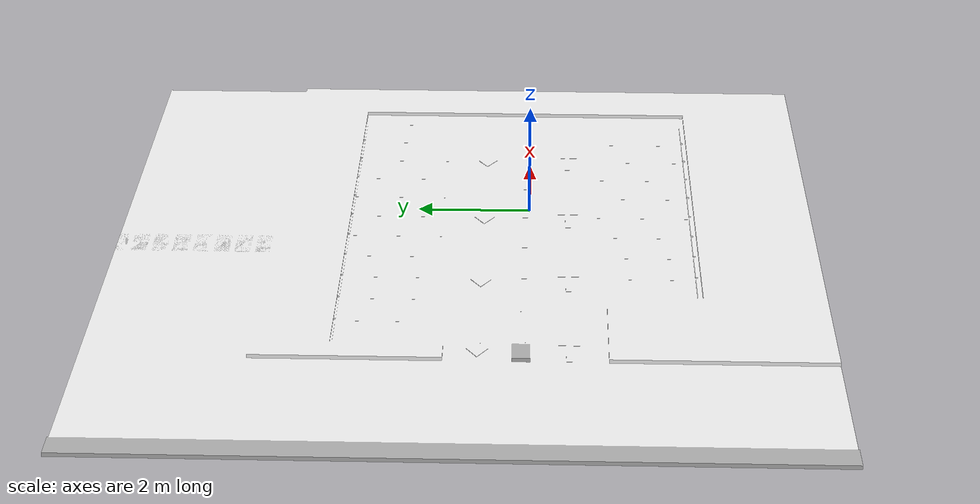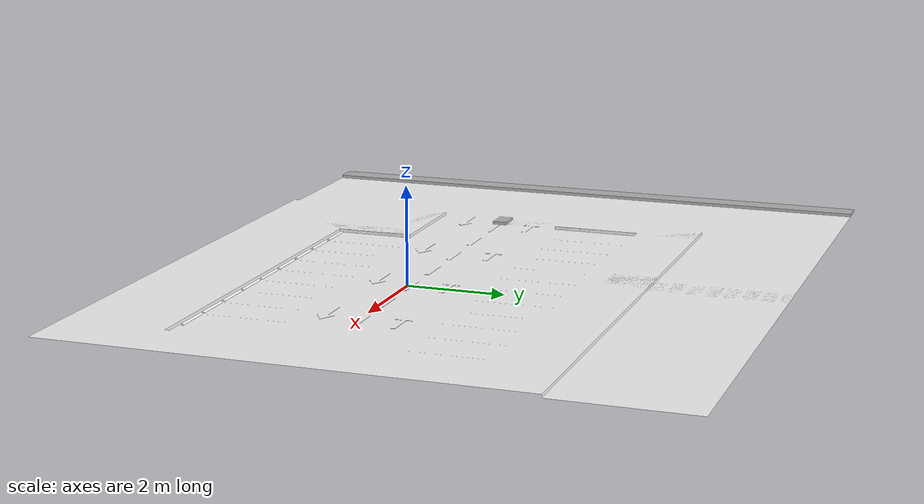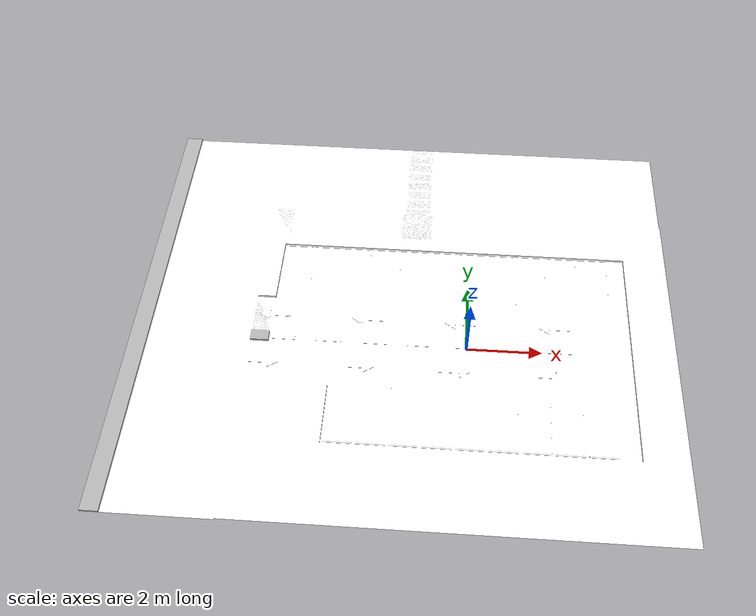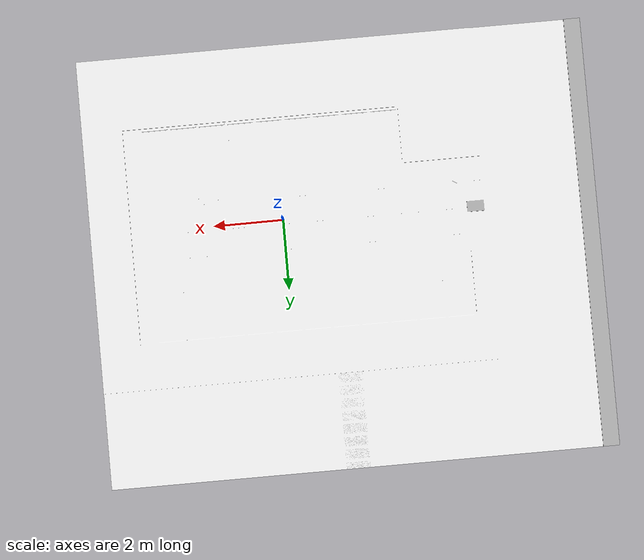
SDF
<?xml version="1.0"?>
<sdf version="1.11">
    <model name="parking lot">
        <static>true</static>
        <link name="base_link">
            <visual name="parking_lot_visual">
                <pose relative_to="__model__">-9 8.5 0 0 0 -1.5707</pose>
                <geometry>
                    <mesh>
                      <uri>meshes/temp_export.dae</uri>
                      <scale>0.3 0.3 0.3</scale>
                    </mesh>
                  </geometry>
            </visual>
            <collision name="parking_lot_collision">
                <pose relative_to="__model__">-2 1 0 0 0 0</pose>
                <geometry>
                    <plane>
                        <normal>0 0 1</normal>
                        <size>15 12</size>
                    </plane>
                </geometry>
            </collision>
        </link>
    </model>
</sdf>
